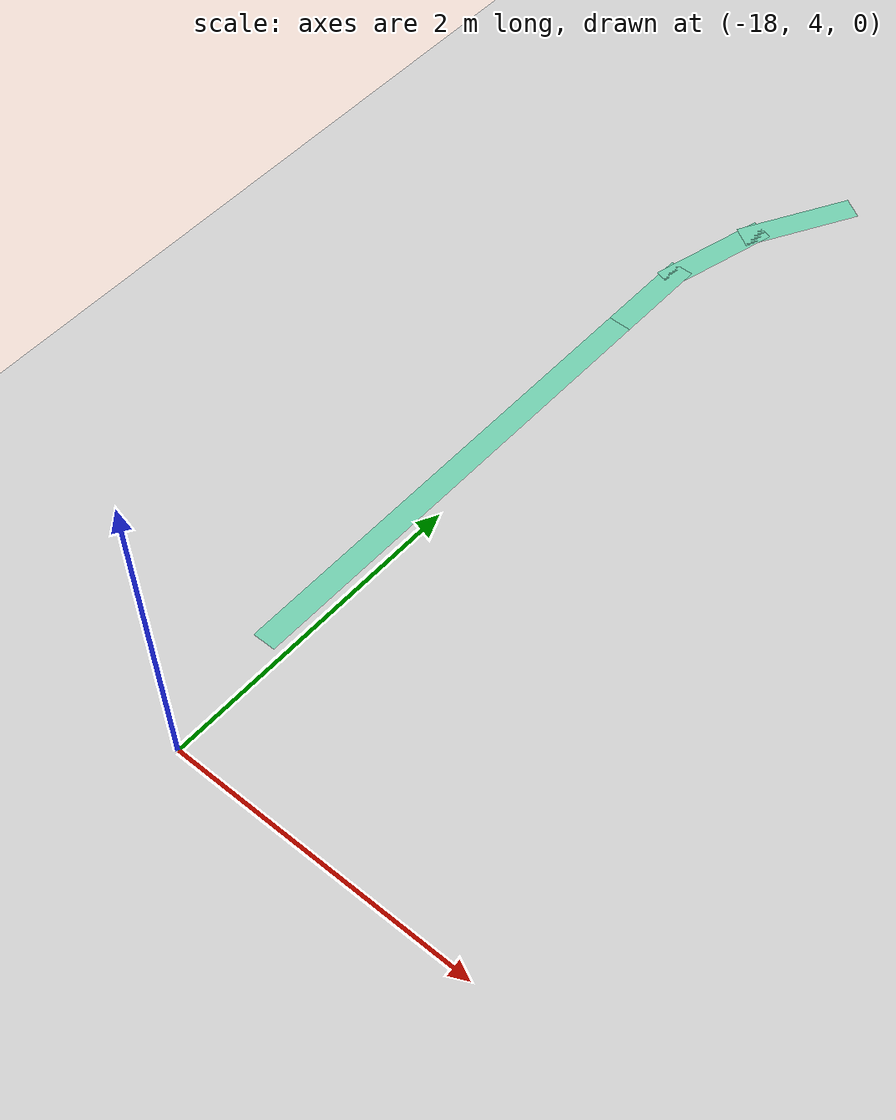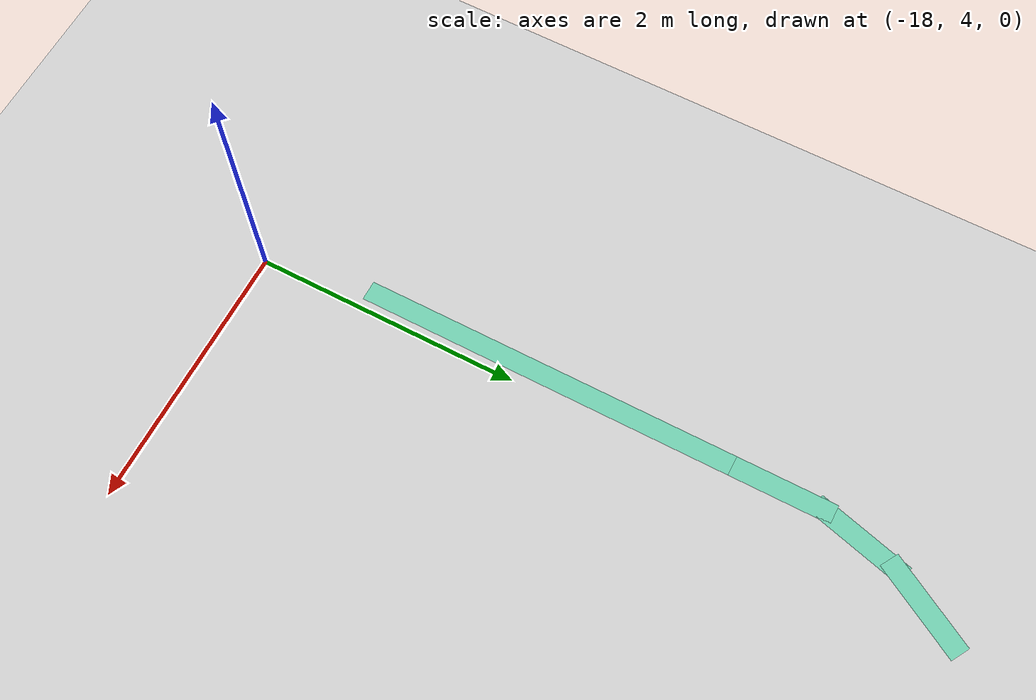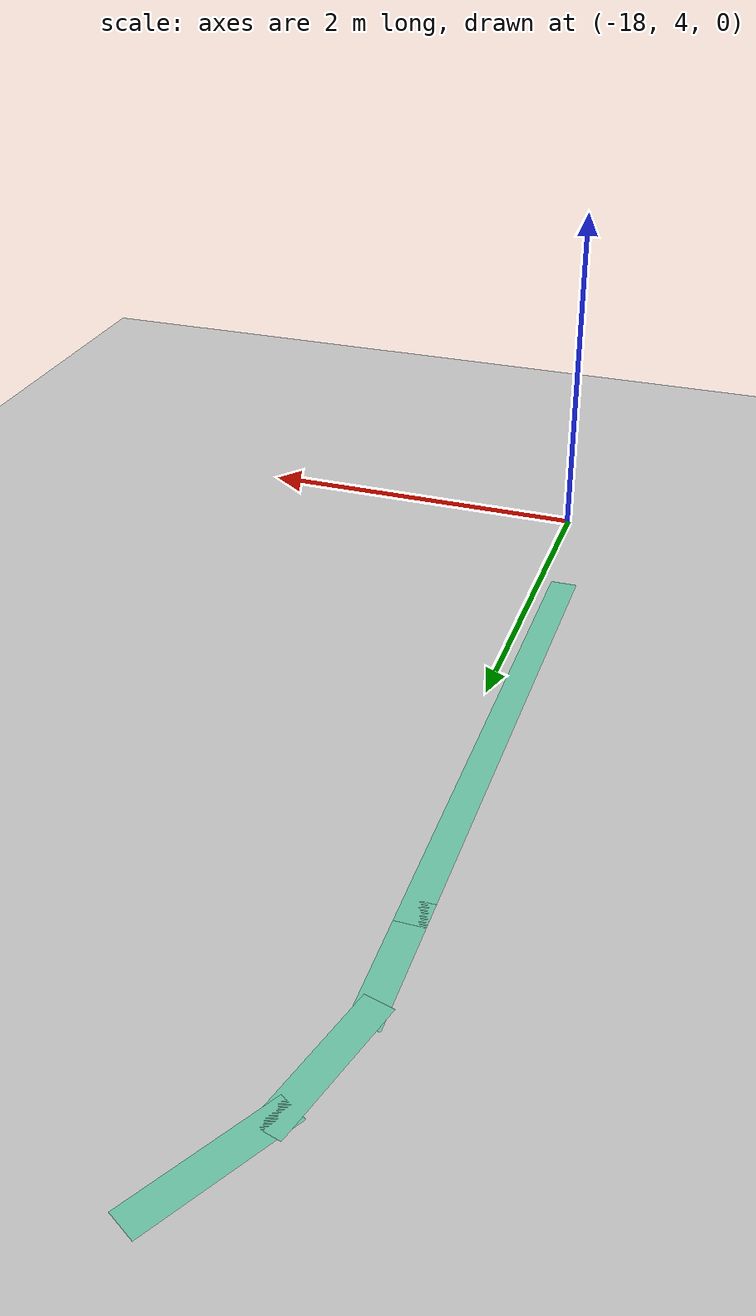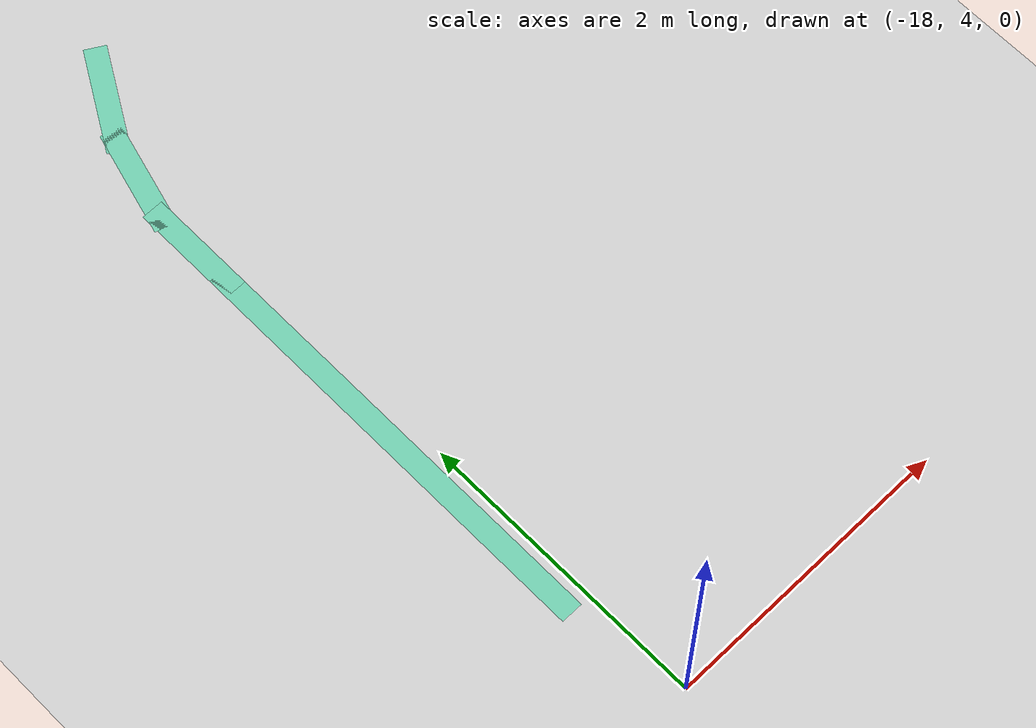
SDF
<sdf version="1.6">
 <world name="default">
  <model name="ground_plane">
   <static>1</static>
   <link name="link">
    <collision name="collision">
     <geometry><plane><normal>0 0 1</normal><size>100 100</size></plane></geometry>
     <surface><friction><ode><mu>100</mu><mu2>50</mu2></ode></friction></surface>
    </collision>
    <visual name="visual">
     <cast_shadows>0</cast_shadows>
     <geometry><plane><normal>0 0 1</normal><size>100 100</size></plane></geometry>
     <material>
      <script><uri>file://media/materials/scripts/gazebo.material</uri><name>Gazebo/Grey</name></script>
     </material>
    </visual>
   </link>
  </model>
  <model name="pomdp_path">
   <link name="Wall_243">
    <pose>9.33724 0.369625 0 0 -0 1.0472</pose>
    <visual name="Wall_243_Visual">
     <pose>0 0 0.0001 0 -0 0</pose>
     <geometry><box><size>0.75 0.15 0</size></box></geometry>
     <material>
      <script><uri>file://media/materials/scripts/gazebo.material</uri><name>Gazebo/Grey</name></script>
      <ambient>0.435294 0.796078 0.67451 1</ambient>
      <shader type="pixel"/>
     </material>
     <meta><layer>0</layer></meta>
    </visual>
    <collision name="Wall_243_Collision">
     <pose>0 0 0.0001 0 -0 0</pose>
     <geometry><box><size>0.75 0.15 0</size></box></geometry>
     <surface>
      <friction>
       <ode><mu>1</mu><mu2>1</mu2><fdir1>0 0 0</fdir1><slip1>0</slip1><slip2>0</slip2></ode>
       <torsional>
        <coefficient>1</coefficient>
        <patch_radius>0</patch_radius>
        <surface_radius>0</surface_radius>
        <use_patch_radius>1</use_patch_radius>
        <ode><slip>0</slip></ode>
       </torsional>
      </friction>
      <bounce><restitution_coefficient>0</restitution_coefficient><threshold>1e+06</threshold></bounce>
      <contact>
       <collide_without_contact>0</collide_without_contact>
       <collide_without_contact_bitmask>1</collide_without_contact_bitmask>
       <collide_bitmask>1</collide_bitmask>
       <ode>
        <soft_cfm>0</soft_cfm>
        <soft_erp>0.2</soft_erp>
        <kp>1e+13</kp>
        <kd>1</kd>
        <max_vel>0.01</max_vel>
        <min_depth>0</min_depth>
       </ode>
       <bullet>
        <split_impulse>1</split_impulse>
        <split_impulse_penetration_threshold>-0.01</split_impulse_penetration_threshold>
        <soft_cfm>0</soft_cfm>
        <soft_erp>0.2</soft_erp>
        <kp>1e+13</kp>
        <kd>1</kd>
       </bullet>
      </contact>
     </surface>
    </collision>
   </link>
   <link name="Wall_244">
    <pose>9.56489 0.91921 0 0 -0 1.309</pose>
    <visual name="Wall_244_Visual">
     <pose>0 0 0.0001 0 -0 0</pose>
     <geometry><box><size>0.75 0.15 0</size></box></geometry>
     <material>
      <script><uri>file://media/materials/scripts/gazebo.material</uri><name>Gazebo/Grey</name></script>
      <ambient>0.435294 0.796078 0.67451 1</ambient>
      <shader type="pixel"/>
     </material>
     <meta><layer>0</layer></meta>
    </visual>
    <collision name="Wall_244_Collision">
     <pose>0 0 0.0001 0 -0 0</pose>
     <geometry><box><size>0.75 0.15 0</size></box></geometry>
     <surface>
      <friction>
       <ode><mu>1</mu><mu2>1</mu2><fdir1>0 0 0</fdir1><slip1>0</slip1><slip2>0</slip2></ode>
       <torsional>
        <coefficient>1</coefficient>
        <patch_radius>0</patch_radius>
        <surface_radius>0</surface_radius>
        <use_patch_radius>1</use_patch_radius>
        <ode><slip>0</slip></ode>
       </torsional>
      </friction>
      <bounce><restitution_coefficient>0</restitution_coefficient><threshold>1e+06</threshold></bounce>
      <contact>
       <collide_without_contact>0</collide_without_contact>
       <collide_without_contact_bitmask>1</collide_without_contact_bitmask>
       <collide_bitmask>1</collide_bitmask>
       <ode>
        <soft_cfm>0</soft_cfm>
        <soft_erp>0.2</soft_erp>
        <kp>1e+13</kp>
        <kd>1</kd>
        <max_vel>0.01</max_vel>
        <min_depth>0</min_depth>
       </ode>
       <bullet>
        <split_impulse>1</split_impulse>
        <split_impulse_penetration_threshold>-0.01</split_impulse_penetration_threshold>
        <soft_cfm>0</soft_cfm>
        <soft_erp>0.2</soft_erp>
        <kp>1e+13</kp>
        <kd>1</kd>
       </bullet>
      </contact>
     </surface>
    </collision>
   </link>
   <link name="Wall_245">
    <pose>9.64253 1.50899 0 0 -0 1.5708</pose>
    <visual name="Wall_245_Visual">
     <pose>0 0 0.0001 0 -0 0</pose>
     <geometry><box><size>0.75 0.15 0</size></box></geometry>
     <material>
      <script><uri>file://media/materials/scripts/gazebo.material</uri><name>Gazebo/Grey</name></script>
      <ambient>0.435294 0.796078 0.67451 1</ambient>
      <shader type="pixel"/>
     </material>
     <meta><layer>0</layer></meta>
    </visual>
    <collision name="Wall_245_Collision">
     <pose>0 0 0.0001 0 -0 0</pose>
     <geometry><box><size>0.75 0.15 0</size></box></geometry>
     <surface>
      <friction>
       <ode><mu>1</mu><mu2>1</mu2><fdir1>0 0 0</fdir1><slip1>0</slip1><slip2>0</slip2></ode>
       <torsional>
        <coefficient>1</coefficient>
        <patch_radius>0</patch_radius>
        <surface_radius>0</surface_radius>
        <use_patch_radius>1</use_patch_radius>
        <ode><slip>0</slip></ode>
       </torsional>
      </friction>
      <bounce><restitution_coefficient>0</restitution_coefficient><threshold>1e+06</threshold></bounce>
      <contact>
       <collide_without_contact>0</collide_without_contact>
       <collide_without_contact_bitmask>1</collide_without_contact_bitmask>
       <collide_bitmask>1</collide_bitmask>
       <ode>
        <soft_cfm>0</soft_cfm>
        <soft_erp>0.2</soft_erp>
        <kp>1e+13</kp>
        <kd>1</kd>
        <max_vel>0.01</max_vel>
        <min_depth>0</min_depth>
       </ode>
       <bullet>
        <split_impulse>1</split_impulse>
        <split_impulse_penetration_threshold>-0.01</split_impulse_penetration_threshold>
        <soft_cfm>0</soft_cfm>
        <soft_erp>0.2</soft_erp>
        <kp>1e+13</kp>
        <kd>1</kd>
       </bullet>
      </contact>
     </surface>
    </collision>
   </link>
   <link name="Wall_249">
    <pose>9.64253 3.23399 0 0 -0 1.5708</pose>
    <visual name="Wall_249_Visual">
     <pose>0 0 0.0001 0 -0 0</pose>
     <geometry><box><size>3 0.15 0</size></box></geometry>
     <material>
      <script><uri>file://media/materials/scripts/gazebo.material</uri><name>Gazebo/Grey</name></script>
      <ambient>0.435294 0.796078 0.67451 1</ambient>
      <shader type="pixel"/>
     </material>
     <meta><layer>0</layer></meta>
    </visual>
    <collision name="Wall_249_Collision">
     <pose>0 0 0.0001 0 -0 0</pose>
     <geometry><box><size>3 0.15 0</size></box></geometry>
     <surface>
      <friction>
       <ode><mu>1</mu><mu2>1</mu2><fdir1>0 0 0</fdir1><slip1>0</slip1><slip2>0</slip2></ode>
       <torsional>
        <coefficient>1</coefficient>
        <patch_radius>0</patch_radius>
        <surface_radius>0</surface_radius>
        <use_patch_radius>1</use_patch_radius>
        <ode><slip>0</slip></ode>
       </torsional>
      </friction>
      <bounce><restitution_coefficient>0</restitution_coefficient><threshold>1e+06</threshold></bounce>
      <contact>
       <collide_without_contact>0</collide_without_contact>
       <collide_without_contact_bitmask>1</collide_without_contact_bitmask>
       <collide_bitmask>1</collide_bitmask>
       <ode>
        <soft_cfm>0</soft_cfm>
        <soft_erp>0.2</soft_erp>
        <kp>1e+13</kp>
        <kd>1</kd>
        <max_vel>0.01</max_vel>
        <min_depth>0</min_depth>
       </ode>
       <bullet>
        <split_impulse>1</split_impulse>
        <split_impulse_penetration_threshold>-0.01</split_impulse_penetration_threshold>
        <soft_cfm>0</soft_cfm>
        <soft_erp>0.2</soft_erp>
        <kp>1e+13</kp>
        <kd>1</kd>
       </bullet>
      </contact>
     </surface>
    </collision>
   </link>
   <static>1</static>
   <pose>-8.49995 9.50005 0 0 -0 3.14159</pose>
  </model>
 </world>
</sdf>
